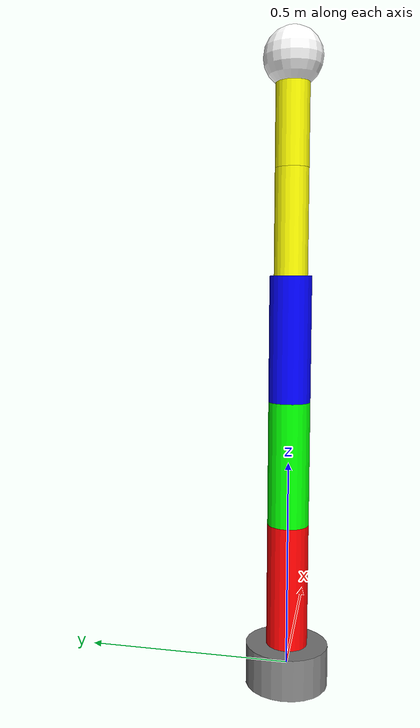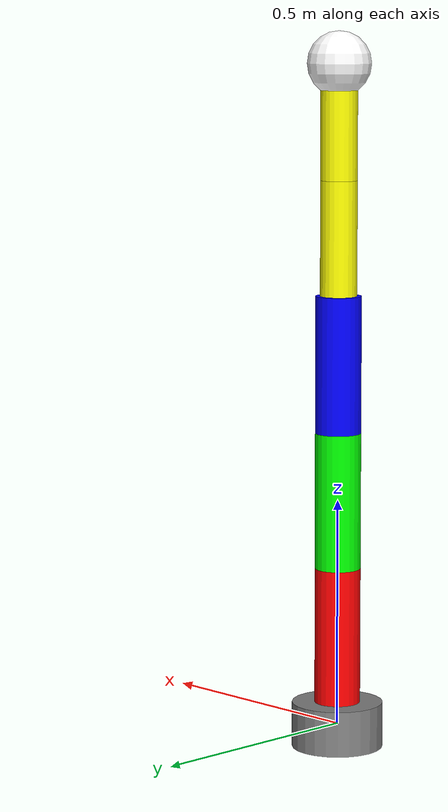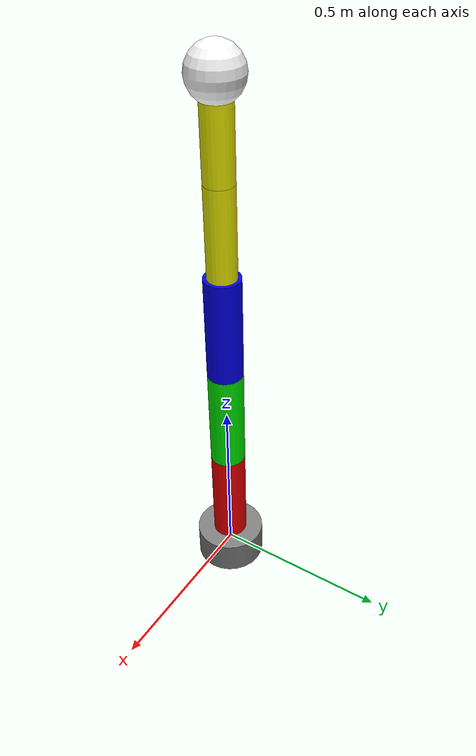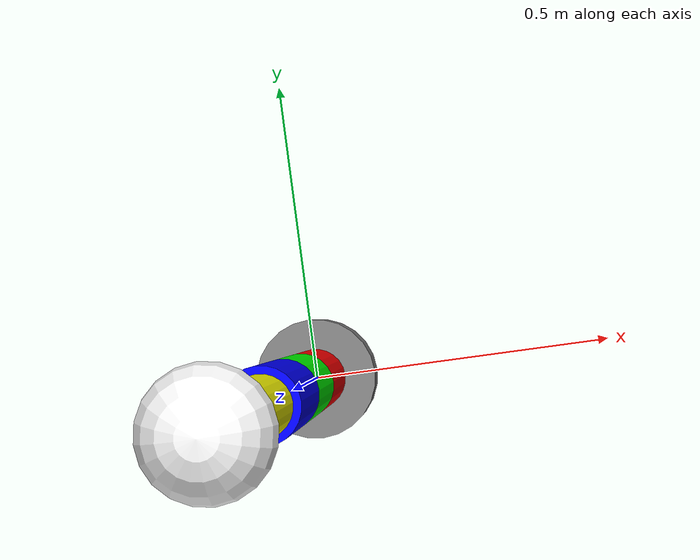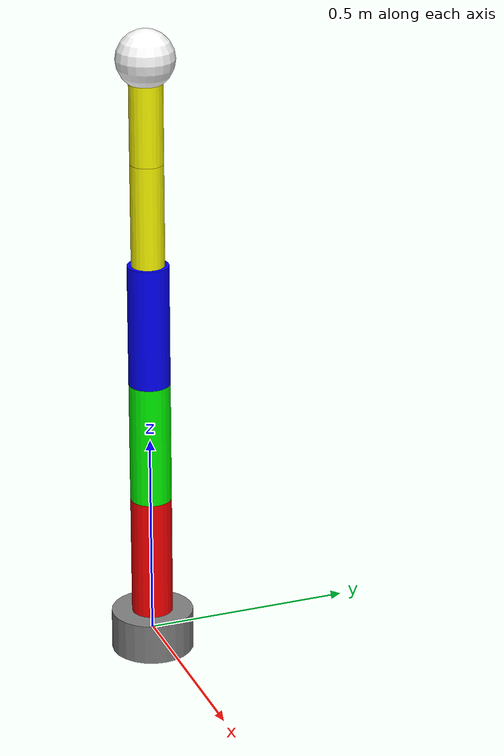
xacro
<?xml version="1.0"?>
<robot xmlns:xacro="http://www.ros.org/wiki/xacro" name="gear_manipulator">
    <xacro:arg name="initial_positions_file" default="initial_positions.yaml" />

    <!-- Import gear_manipulator urdf file -->
    <xacro:include filename="$(find my_robot)/urdf/gear_manipulator.urdf" />

    <!-- Import control_xacro -->
    <xacro:include filename="gear_manipulator.ros2_control.xacro" />

    <xacro:gear_manipulator_ros2_control name="FakeSystem" initial_positions_file="$(arg initial_positions_file)"/>

</robot>

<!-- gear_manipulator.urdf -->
<robot name="gear_manipulator">

  <!-- MATERIALS -->
  <material name="gray"><color rgba="0.5 0.5 0.5 1"/></material>
  <material name="red"><color rgba="1 0 0 1"/></material>
  <material name="green"><color rgba="0 1 0 1"/></material>
  <material name="blue"><color rgba="0 0 1 1"/></material>
  <material name="yellow"><color rgba="1 1 0 1"/></material>
  <material name="white"><color rgba="1 1 1 1"/></material>

  <!-- BASE -->
  <link name="base_link">
    <visual>
      <geometry><cylinder radius="0.1" length="0.1"/></geometry>
      <material name="gray"/>
    </visual>
  </link>

  <!-- LINK 1 -->
  <link name="link1">
    <visual>
      <origin xyz="0 0 0.15" rpy="0 0 0"/> <!-- cylinder vertical -->
      <geometry><cylinder length="0.3" radius="0.05"/></geometry>
      <material name="red"/>
    </visual>
  </link>

  <joint name="joint1" type="revolute">
    <parent link="base_link"/>
    <child link="link1"/>
    <origin xyz="0 0 0.05"/>
    <axis xyz="0 0 1"/> <!-- base rotates around Z -->
    <limit lower="0" upper="1.57" effort="10" velocity="1"/>
  </joint>

  <!-- LINK 2 -->
  <link name="link2">
    <visual>
      <origin xyz="0 0 0.15" rpy="0 0 0"/>
      <geometry><cylinder length="0.3" radius="0.05"/></geometry>
      <material name="green"/>
    </visual>
  </link>

  <joint name="joint2" type="revolute">
    <parent link="link1"/>
    <child link="link2"/>
    <origin xyz="0 0 0.3"/>   <!-- attached at top of link1 -->
    <axis xyz="1 0 0"/>      <!-- rotate around X to bend "other way" -->
    <limit lower="0.0" upper="2.0" effort="10" velocity="1"/>
  </joint>

  <!-- LINK 3 -->
  <link name="link3">
    <visual>
      <origin xyz="0 0 0.15" rpy="0 0 0"/>
      <geometry><cylinder length="0.3" radius="0.05"/></geometry>
      <material name="blue"/>
    </visual>
  </link>

  <joint name="joint3" type="revolute">
    <parent link="link2"/>
    <child link="link3"/>
    <origin xyz="0 0 0.3"/>   <!-- attached at top of link2 -->
    <axis xyz="1 0 0"/>      <!-- rotate around X → opposite bend -->
    <limit lower="-2.0" upper="2.0" effort="10" velocity="1"/>
  </joint>

  <!-- LINK 4 -->
  <link name="link4">
    <visual>
      <origin xyz="0 0 0.125" rpy="0 0 0"/>
      <geometry><cylinder length="0.25" radius="0.04"/></geometry>
      <material name="yellow"/>
    </visual>
  </link>

  <joint name="joint4" type="revolute">
    <parent link="link3"/>
    <child link="link4"/>
    <origin xyz="0 0 0.3"/>  <!-- top of link3 -->
    <axis xyz="0 0 1"/>      <!-- wrist twist now vertical -->
    <limit lower="-3.14" upper="3.14" effort="10" velocity="1"/>
  </joint>

  <!-- LINK 5 (wrist cylinder) -->
  <link name="link5">
    <visual>
      <origin xyz="0 0 0.125" rpy="0 0 0"/>
      <geometry><cylinder length="0.25" radius="0.04"/></geometry>
      <material name="yellow"/>
    </visual>
  </link>

  <!-- JOINT 5 (like joints 2 & 3) -->
  <joint name="joint5" type="revolute">
    <parent link="link4"/>
    <child link="link5"/>
    <origin xyz="0 0 0.25"/>  <!-- attached at top of link4 -->
    <axis xyz="1 0 0"/>       <!-- rotate like joints 2 & 3 -->
    <limit lower="-3.14" upper="3.14" effort="10" velocity="1"/>
  </joint>

  <!-- END EFFECTOR (ball) -->
  <link name="end_effector">
    <visual>
      <origin xyz="0 0 0.125"/>
      <geometry><sphere radius="0.07"/></geometry>
      <material name="white"/>
    </visual>
  </link>

  <!-- Fixed joint connecting cylinder to ball -->
  <joint name="ee_fixed" type="fixed">
    <parent link="link5"/>
    <child link="end_effector"/>
    <origin xyz="0 0 0.125"/>
  </joint>

</robot>
